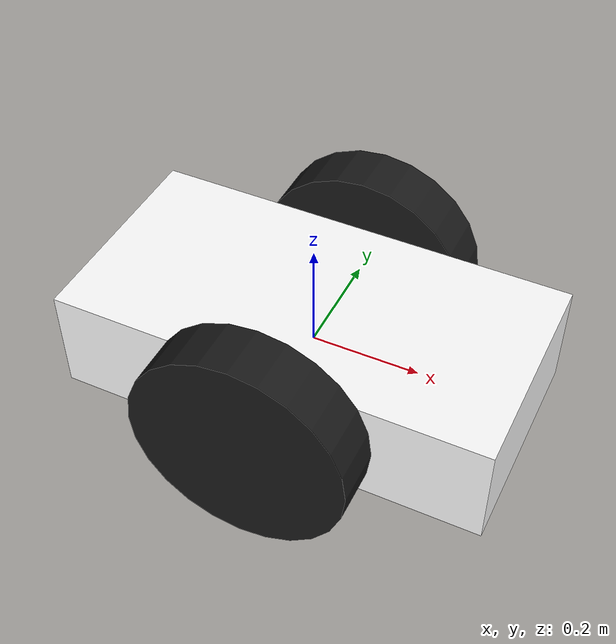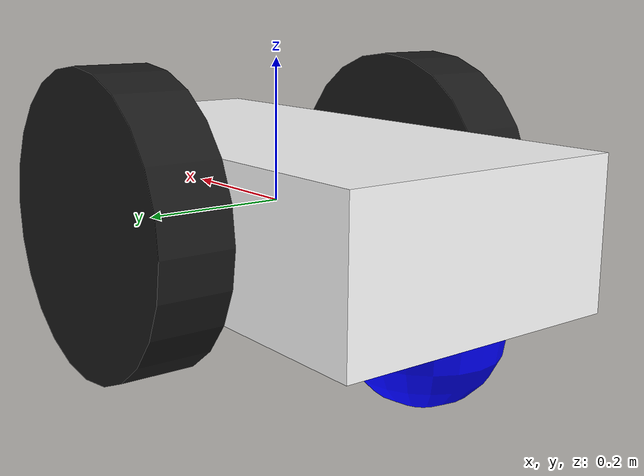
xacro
<?xml version="1.0"?>
<robot xmlns:xacro="http://www.ros.org/wiki/xacro" name="test_robot">
	<xacro:include filename="body.xacro"/>
	<xacro:include filename="wheel.xacro"/>
	<xacro:body/>
	<xacro:wheel parent="base_link" side="left" name="wheel_l"/>
	<xacro:wheel parent="base_link" side="right" name="wheel_r"/>
</robot>

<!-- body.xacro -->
<robot xmlns:xacro="http://www.ros.org/wiki/xacro">

	<xacro:macro name="kostil" params="x_shift">
		<visual>
			<origin xyz="${x_shift} 0 -0.1" rpy="0 0 0"/>
			<geometry>
				<sphere radius="0.1"/>
			</geometry>
			<material name="blue">
				<color rgba="0 0 1 1"/>
			</material>
		</visual>
	</xacro:macro>

	<xacro:macro name="body">
		<link name="base_link">
			<visual>
				<geometry>
					<box size="0.8 0.4 0.2"/>
				</geometry>
				<material name="white">
					<color rgba="1 1 1 1"/>
				</material>
			</visual>
			<xacro:kostil x_shift="0.3"/>
			<xacro:kostil x_shift="-0.3"/>
		</link>
	</xacro:macro>
</robot>

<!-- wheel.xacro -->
<robot xmlns:xacro="http://www.ros.org/wiki/xacro">
	<xacro:macro name="wheel" params="parent side name">

		<xacro:if value="${side == 'left'}">
			<xacro:property name="x_sign" value="1" />
		</xacro:if>
		<xacro:if value="${side == 'right'}">
			<xacro:property name="x_sign" value="-1" />
		</xacro:if>

		<link name="${name}">
			<visual>
				<geometry>
					<cylinder radius="0.2" length="0.1"/>
				</geometry>
				<material name="black">
					<color rgba="0.1 0.1 0.1 1"/>
				</material>
			</visual>
		</link>

		<joint name="${name}_joint" type="continuous">
			<parent link="${parent}"/>
			<child link="${name}"/>
			<origin xyz="0 ${x_sign*0.25} 0" rpy="1.57 0 0"/>
			<axis xyz="0 0 1"/>
		</joint>

	</xacro:macro>
</robot>
